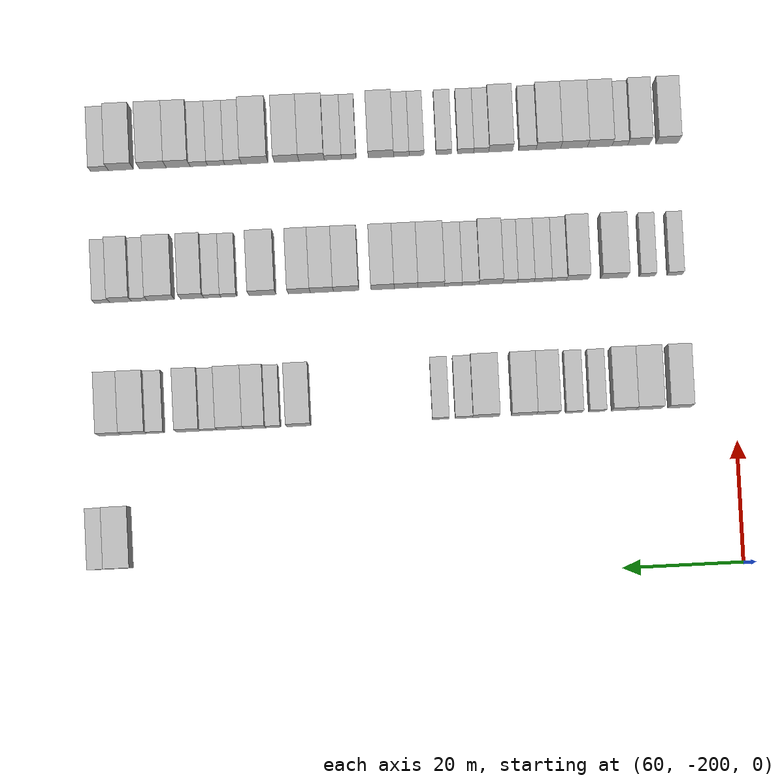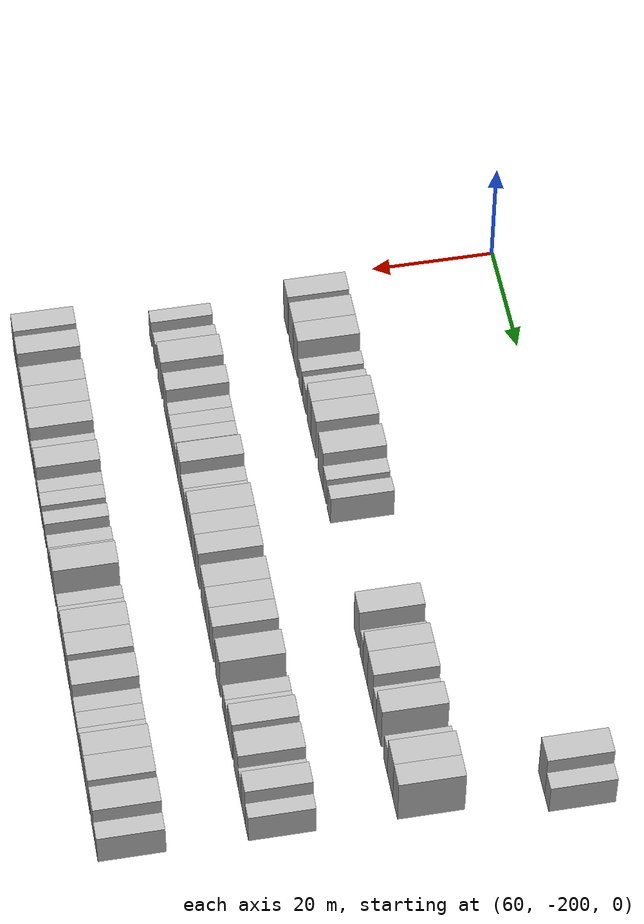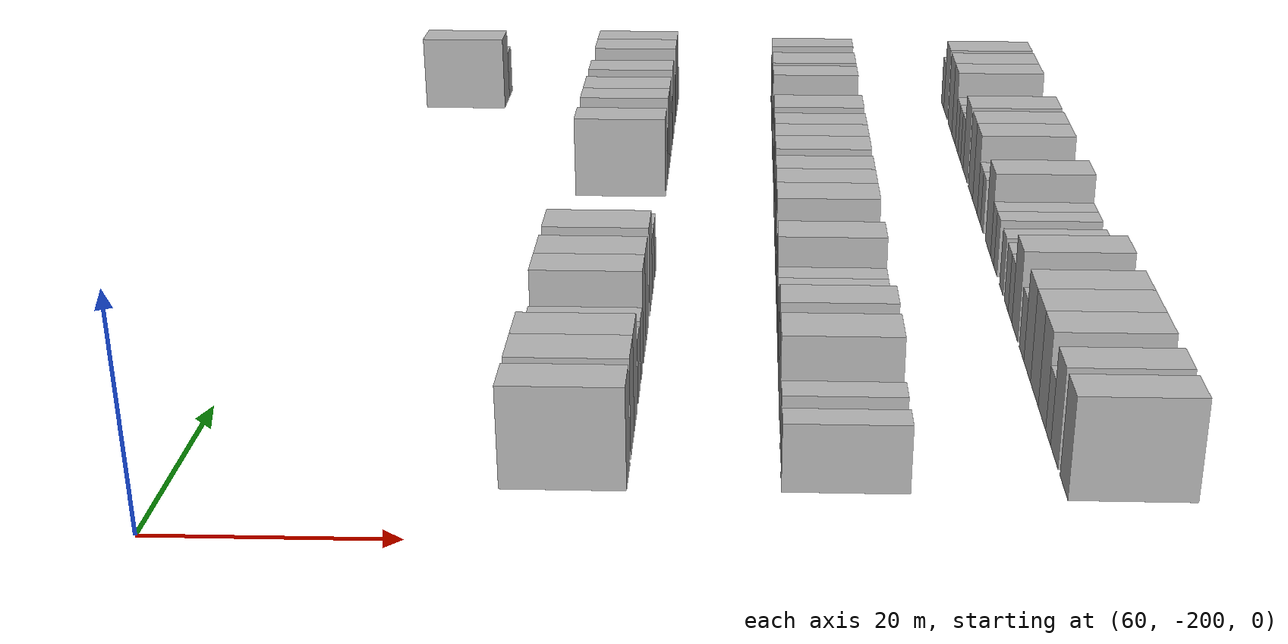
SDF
<sdf version="1.6">
 <world name="default">
  <model name="building_456">
   <static>1</static>
   <pose>69.0000 -97.4067 0 0.000000 0.000000 0.000000</pose>
   <link name="link">
    <pose>0 0 4.50 0 0 0</pose>
    <collision name="collision"><geometry><box><size>10.0000 4.2614 9.0000</size></box></geometry></collision>
    <visual name="visual">
     <cast_shadows>0</cast_shadows>
     <geometry><box><size>10.0000 4.2614 9.0000</size></box></geometry>
     <material>
      <script>
       <uri>model://HANNAS_wall/materials/scripts</uri>
       <uri>model://HANNAS_wall/materials/textures</uri>
       <name>vrc/HANNAS_wall</name>
      </script>
     </material>
    </visual>
   </link>
  </model>
  <model name="building_457">
   <static>1</static>
   <pose>69.0000 -93.8377 0 0.000000 0.000000 0.000000</pose>
   <link name="link">
    <pose>0 0 3.00 0 0 0</pose>
    <collision name="collision"><geometry><box><size>10.0000 2.8764 6.0000</size></box></geometry></collision>
    <visual name="visual">
     <cast_shadows>0</cast_shadows>
     <geometry><box><size>10.0000 2.8764 6.0000</size></box></geometry>
     <material>
      <script>
       <uri>model://HANNAS_wall/materials/scripts</uri>
       <uri>model://HANNAS_wall/materials/textures</uri>
       <name>vrc/HANNAS_wall</name>
      </script>
     </material>
    </visual>
   </link>
  </model>
  <model name="building_626">
   <static>1</static>
   <pose>91.0000 -190.6984 0 0.000000 0.000000 0.000000</pose>
   <link name="link">
    <pose>0 0 4.50 0 0 0</pose>
    <collision name="collision"><geometry><box><size>10.0000 3.8415 9.0000</size></box></geometry></collision>
    <visual name="visual">
     <cast_shadows>0</cast_shadows>
     <geometry><box><size>10.0000 3.8415 9.0000</size></box></geometry>
     <material>
      <script>
       <uri>model://HANNAS_wall/materials/scripts</uri>
       <uri>model://HANNAS_wall/materials/textures</uri>
       <name>vrc/HANNAS_wall</name>
      </script>
     </material>
    </visual>
   </link>
  </model>
  <model name="building_627">
   <static>1</static>
   <pose>91.0000 -185.6395 0 0.000000 0.000000 0.000000</pose>
   <link name="link">
    <pose>0 0 4.50 0 0 0</pose>
    <collision name="collision"><geometry><box><size>10.0000 4.2763 9.0000</size></box></geometry></collision>
    <visual name="visual">
     <cast_shadows>0</cast_shadows>
     <geometry><box><size>10.0000 4.2763 9.0000</size></box></geometry>
     <material>
      <script>
       <uri>model://HANNAS_wall/materials/scripts</uri>
       <uri>model://HANNAS_wall/materials/textures</uri>
       <name>vrc/HANNAS_wall</name>
      </script>
     </material>
    </visual>
   </link>
  </model>
  <model name="building_628">
   <static>1</static>
   <pose>91.0000 -181.4805 0 0.000000 0.000000 0.000000</pose>
   <link name="link">
    <pose>0 0 4.50 0 0 0</pose>
    <collision name="collision"><geometry><box><size>10.0000 4.0417 9.0000</size></box></geometry></collision>
    <visual name="visual">
     <cast_shadows>0</cast_shadows>
     <geometry><box><size>10.0000 4.0417 9.0000</size></box></geometry>
     <material>
      <script>
       <uri>model://HANNAS_wall/materials/scripts</uri>
       <uri>model://HANNAS_wall/materials/textures</uri>
       <name>vrc/HANNAS_wall</name>
      </script>
     </material>
    </visual>
   </link>
  </model>
  <model name="building_629">
   <static>1</static>
   <pose>91.0000 -177.0757 0 0.000000 0.000000 0.000000</pose>
   <link name="link">
    <pose>0 0 3.00 0 0 0</pose>
    <collision name="collision"><geometry><box><size>10.0000 2.7678 6.0000</size></box></geometry></collision>
    <visual name="visual">
     <cast_shadows>0</cast_shadows>
     <geometry><box><size>10.0000 2.7678 6.0000</size></box></geometry>
     <material>
      <script>
       <uri>model://HANNAS_wall/materials/scripts</uri>
       <uri>model://HANNAS_wall/materials/textures</uri>
       <name>vrc/HANNAS_wall</name>
      </script>
     </material>
    </visual>
   </link>
  </model>
  <model name="building_630">
   <static>1</static>
   <pose>91.0000 -173.2748 0 0.000000 0.000000 0.000000</pose>
   <link name="link">
    <pose>0 0 3.00 0 0 0</pose>
    <collision name="collision"><geometry><box><size>10.0000 2.8341 6.0000</size></box></geometry></collision>
    <visual name="visual">
     <cast_shadows>0</cast_shadows>
     <geometry><box><size>10.0000 2.8341 6.0000</size></box></geometry>
     <material>
      <script>
       <uri>model://HANNAS_wall/materials/scripts</uri>
       <uri>model://HANNAS_wall/materials/textures</uri>
       <name>vrc/HANNAS_wall</name>
      </script>
     </material>
    </visual>
   </link>
  </model>
  <model name="building_631">
   <static>1</static>
   <pose>91.0000 -168.9737 0 0.000000 0.000000 0.000000</pose>
   <link name="link">
    <pose>0 0 4.50 0 0 0</pose>
    <collision name="collision"><geometry><box><size>10.0000 3.7680 9.0000</size></box></geometry></collision>
    <visual name="visual">
     <cast_shadows>0</cast_shadows>
     <geometry><box><size>10.0000 3.7680 9.0000</size></box></geometry>
     <material>
      <script>
       <uri>model://HANNAS_wall/materials/scripts</uri>
       <uri>model://HANNAS_wall/materials/textures</uri>
       <name>vrc/HANNAS_wall</name>
      </script>
     </material>
    </visual>
   </link>
  </model>
  <model name="building_632">
   <static>1</static>
   <pose>91.0000 -165.0018 0 0.000000 0.000000 0.000000</pose>
   <link name="link">
    <pose>0 0 4.50 0 0 0</pose>
    <collision name="collision"><geometry><box><size>10.0000 4.1758 9.0000</size></box></geometry></collision>
    <visual name="visual">
     <cast_shadows>0</cast_shadows>
     <geometry><box><size>10.0000 4.1758 9.0000</size></box></geometry>
     <material>
      <script>
       <uri>model://HANNAS_wall/materials/scripts</uri>
       <uri>model://HANNAS_wall/materials/textures</uri>
       <name>vrc/HANNAS_wall</name>
      </script>
     </material>
    </visual>
   </link>
  </model>
  <model name="building_633">
   <static>1</static>
   <pose>91.0000 -158.7193 0 0.000000 0.000000 0.000000</pose>
   <link name="link">
    <pose>0 0 4.50 0 0 0</pose>
    <collision name="collision"><geometry><box><size>10.0000 4.3893 9.0000</size></box></geometry></collision>
    <visual name="visual">
     <cast_shadows>0</cast_shadows>
     <geometry><box><size>10.0000 4.3893 9.0000</size></box></geometry>
     <material>
      <script>
       <uri>model://HANNAS_wall/materials/scripts</uri>
       <uri>model://HANNAS_wall/materials/textures</uri>
       <name>vrc/HANNAS_wall</name>
      </script>
     </material>
    </visual>
   </link>
  </model>
  <model name="building_634">
   <static>1</static>
   <pose>91.0000 -155.0816 0 0.000000 0.000000 0.000000</pose>
   <link name="link">
    <pose>0 0 3.00 0 0 0</pose>
    <collision name="collision"><geometry><box><size>10.0000 2.8861 6.0000</size></box></geometry></collision>
    <visual name="visual">
     <cast_shadows>0</cast_shadows>
     <geometry><box><size>10.0000 2.8861 6.0000</size></box></geometry>
     <material>
      <script>
       <uri>model://HANNAS_wall/materials/scripts</uri>
       <uri>model://HANNAS_wall/materials/textures</uri>
       <name>vrc/HANNAS_wall</name>
      </script>
     </material>
    </visual>
   </link>
  </model>
  <model name="building_635">
   <static>1</static>
   <pose>91.0000 -151.2609 0 0.000000 0.000000 0.000000</pose>
   <link name="link">
    <pose>0 0 3.00 0 0 0</pose>
    <collision name="collision"><geometry><box><size>10.0000 2.7555 6.0000</size></box></geometry></collision>
    <visual name="visual">
     <cast_shadows>0</cast_shadows>
     <geometry><box><size>10.0000 2.7555 6.0000</size></box></geometry>
     <material>
      <script>
       <uri>model://HANNAS_wall/materials/scripts</uri>
       <uri>model://HANNAS_wall/materials/textures</uri>
       <name>vrc/HANNAS_wall</name>
      </script>
     </material>
    </visual>
   </link>
  </model>
  <model name="building_636">
   <static>1</static>
   <pose>91.0000 -127.8933 0 0.000000 0.000000 0.000000</pose>
   <link name="link">
    <pose>0 0 4.50 0 0 0</pose>
    <collision name="collision"><geometry><box><size>10.0000 3.9932 9.0000</size></box></geometry></collision>
    <visual name="visual">
     <cast_shadows>0</cast_shadows>
     <geometry><box><size>10.0000 3.9932 9.0000</size></box></geometry>
     <material>
      <script>
       <uri>model://HANNAS_wall/materials/scripts</uri>
       <uri>model://HANNAS_wall/materials/textures</uri>
       <name>vrc/HANNAS_wall</name>
      </script>
     </material>
    </visual>
   </link>
  </model>
  <model name="building_637">
   <static>1</static>
   <pose>91.0000 -123.6690 0 0.000000 0.000000 0.000000</pose>
   <link name="link">
    <pose>0 0 3.00 0 0 0</pose>
    <collision name="collision"><geometry><box><size>10.0000 2.4554 6.0000</size></box></geometry></collision>
    <visual name="visual">
     <cast_shadows>0</cast_shadows>
     <geometry><box><size>10.0000 2.4554 6.0000</size></box></geometry>
     <material>
      <script>
       <uri>model://HANNAS_wall/materials/scripts</uri>
       <uri>model://HANNAS_wall/materials/textures</uri>
       <name>vrc/HANNAS_wall</name>
      </script>
     </material>
    </visual>
   </link>
  </model>
  <model name="building_638">
   <static>1</static>
   <pose>91.0000 -120.6299 0 0.000000 0.000000 0.000000</pose>
   <link name="link">
    <pose>0 0 4.50 0 0 0</pose>
    <collision name="collision"><geometry><box><size>10.0000 3.6229 9.0000</size></box></geometry></collision>
    <visual name="visual">
     <cast_shadows>0</cast_shadows>
     <geometry><box><size>10.0000 3.6229 9.0000</size></box></geometry>
     <material>
      <script>
       <uri>model://HANNAS_wall/materials/scripts</uri>
       <uri>model://HANNAS_wall/materials/textures</uri>
       <name>vrc/HANNAS_wall</name>
      </script>
     </material>
    </visual>
   </link>
  </model>
  <model name="building_639">
   <static>1</static>
   <pose>91.0000 -116.6275 0 0.000000 0.000000 0.000000</pose>
   <link name="link">
    <pose>0 0 4.50 0 0 0</pose>
    <collision name="collision"><geometry><box><size>10.0000 4.3820 9.0000</size></box></geometry></collision>
    <visual name="visual">
     <cast_shadows>0</cast_shadows>
     <geometry><box><size>10.0000 4.3820 9.0000</size></box></geometry>
     <material>
      <script>
       <uri>model://HANNAS_wall/materials/scripts</uri>
       <uri>model://HANNAS_wall/materials/textures</uri>
       <name>vrc/HANNAS_wall</name>
      </script>
     </material>
    </visual>
   </link>
  </model>
  <model name="building_640">
   <static>1</static>
   <pose>91.0000 -113.0607 0 0.000000 0.000000 0.000000</pose>
   <link name="link">
    <pose>0 0 3.00 0 0 0</pose>
    <collision name="collision"><geometry><box><size>10.0000 2.7515 6.0000</size></box></geometry></collision>
    <visual name="visual">
     <cast_shadows>0</cast_shadows>
     <geometry><box><size>10.0000 2.7515 6.0000</size></box></geometry>
     <material>
      <script>
       <uri>model://HANNAS_wall/materials/scripts</uri>
       <uri>model://HANNAS_wall/materials/textures</uri>
       <name>vrc/HANNAS_wall</name>
      </script>
     </material>
    </visual>
   </link>
  </model>
  <model name="building_641">
   <static>1</static>
   <pose>91.0000 -109.7046 0 0.000000 0.000000 0.000000</pose>
   <link name="link">
    <pose>0 0 4.50 0 0 0</pose>
    <collision name="collision"><geometry><box><size>10.0000 3.9606 9.0000</size></box></geometry></collision>
    <visual name="visual">
     <cast_shadows>0</cast_shadows>
     <geometry><box><size>10.0000 3.9606 9.0000</size></box></geometry>
     <material>
      <script>
       <uri>model://HANNAS_wall/materials/scripts</uri>
       <uri>model://HANNAS_wall/materials/textures</uri>
       <name>vrc/HANNAS_wall</name>
      </script>
     </material>
    </visual>
   </link>
  </model>
  <model name="building_642">
   <static>1</static>
   <pose>91.0000 -104.2793 0 0.000000 0.000000 0.000000</pose>
   <link name="link">
    <pose>0 0 3.00 0 0 0</pose>
    <collision name="collision"><geometry><box><size>10.0000 2.8901 6.0000</size></box></geometry></collision>
    <visual name="visual">
     <cast_shadows>0</cast_shadows>
     <geometry><box><size>10.0000 2.8901 6.0000</size></box></geometry>
     <material>
      <script>
       <uri>model://HANNAS_wall/materials/scripts</uri>
       <uri>model://HANNAS_wall/materials/textures</uri>
       <name>vrc/HANNAS_wall</name>
      </script>
     </material>
    </visual>
   </link>
  </model>
  <model name="building_643">
   <static>1</static>
   <pose>91.0000 -100.7126 0 0.000000 0.000000 0.000000</pose>
   <link name="link">
    <pose>0 0 4.50 0 0 0</pose>
    <collision name="collision"><geometry><box><size>10.0000 4.2432 9.0000</size></box></geometry></collision>
    <visual name="visual">
     <cast_shadows>0</cast_shadows>
     <geometry><box><size>10.0000 4.2432 9.0000</size></box></geometry>
     <material>
      <script>
       <uri>model://HANNAS_wall/materials/scripts</uri>
       <uri>model://HANNAS_wall/materials/textures</uri>
       <name>vrc/HANNAS_wall</name>
      </script>
     </material>
    </visual>
   </link>
  </model>
  <model name="building_644">
   <static>1</static>
   <pose>91.0000 -96.7478 0 0.000000 0.000000 0.000000</pose>
   <link name="link">
    <pose>0 0 4.50 0 0 0</pose>
    <collision name="collision"><geometry><box><size>10.0000 3.6864 9.0000</size></box></geometry></collision>
    <visual name="visual">
     <cast_shadows>0</cast_shadows>
     <geometry><box><size>10.0000 3.6864 9.0000</size></box></geometry>
     <material>
      <script>
       <uri>model://HANNAS_wall/materials/scripts</uri>
       <uri>model://HANNAS_wall/materials/textures</uri>
       <name>vrc/HANNAS_wall</name>
      </script>
     </material>
    </visual>
   </link>
  </model>
  <model name="building_821">
   <static>1</static>
   <pose>113.0000 -191.1264 0 0.000000 0.000000 0.000000</pose>
   <link name="link">
    <pose>0 0 3.00 0 0 0</pose>
    <collision name="collision"><geometry><box><size>10.0000 2.5406 6.0000</size></box></geometry></collision>
    <visual name="visual">
     <cast_shadows>0</cast_shadows>
     <geometry><box><size>10.0000 2.5406 6.0000</size></box></geometry>
     <material>
      <script>
       <uri>model://HANNAS_wall/materials/scripts</uri>
       <uri>model://HANNAS_wall/materials/textures</uri>
       <name>vrc/HANNAS_wall</name>
      </script>
     </material>
    </visual>
   </link>
  </model>
  <model name="building_822">
   <static>1</static>
   <pose>113.0000 -186.5541 0 0.000000 0.000000 0.000000</pose>
   <link name="link">
    <pose>0 0 3.00 0 0 0</pose>
    <collision name="collision"><geometry><box><size>10.0000 2.6040 6.0000</size></box></geometry></collision>
    <visual name="visual">
     <cast_shadows>0</cast_shadows>
     <geometry><box><size>10.0000 2.6040 6.0000</size></box></geometry>
     <material>
      <script>
       <uri>model://HANNAS_wall/materials/scripts</uri>
       <uri>model://HANNAS_wall/materials/textures</uri>
       <name>vrc/HANNAS_wall</name>
      </script>
     </material>
    </visual>
   </link>
  </model>
  <model name="building_823">
   <static>1</static>
   <pose>113.0000 -181.0548 0 0.000000 0.000000 0.000000</pose>
   <link name="link">
    <pose>0 0 4.50 0 0 0</pose>
    <collision name="collision"><geometry><box><size>10.0000 4.3947 9.0000</size></box></geometry></collision>
    <visual name="visual">
     <cast_shadows>0</cast_shadows>
     <geometry><box><size>10.0000 4.3947 9.0000</size></box></geometry>
     <material>
      <script>
       <uri>model://HANNAS_wall/materials/scripts</uri>
       <uri>model://HANNAS_wall/materials/textures</uri>
       <name>vrc/HANNAS_wall</name>
      </script>
     </material>
    </visual>
   </link>
  </model>
  <model name="building_824">
   <static>1</static>
   <pose>113.0000 -175.0235 0 0.000000 0.000000 0.000000</pose>
   <link name="link">
    <pose>0 0 4.50 0 0 0</pose>
    <collision name="collision"><geometry><box><size>10.0000 3.6678 9.0000</size></box></geometry></collision>
    <visual name="visual">
     <cast_shadows>0</cast_shadows>
     <geometry><box><size>10.0000 3.6678 9.0000</size></box></geometry>
     <material>
      <script>
       <uri>model://HANNAS_wall/materials/scripts</uri>
       <uri>model://HANNAS_wall/materials/textures</uri>
       <name>vrc/HANNAS_wall</name>
      </script>
     </material>
    </visual>
   </link>
  </model>
  <model name="building_825">
   <static>1</static>
   <pose>113.0000 -171.9260 0 0.000000 0.000000 0.000000</pose>
   <link name="link">
    <pose>0 0 3.00 0 0 0</pose>
    <collision name="collision"><geometry><box><size>10.0000 2.5271 6.0000</size></box></geometry></collision>
    <visual name="visual">
     <cast_shadows>0</cast_shadows>
     <geometry><box><size>10.0000 2.5271 6.0000</size></box></geometry>
     <material>
      <script>
       <uri>model://HANNAS_wall/materials/scripts</uri>
       <uri>model://HANNAS_wall/materials/textures</uri>
       <name>vrc/HANNAS_wall</name>
      </script>
     </material>
    </visual>
   </link>
  </model>
  <model name="building_826">
   <static>1</static>
   <pose>113.0000 -169.2545 0 0.000000 0.000000 0.000000</pose>
   <link name="link">
    <pose>0 0 3.00 0 0 0</pose>
    <collision name="collision"><geometry><box><size>10.0000 2.8158 6.0000</size></box></geometry></collision>
    <visual name="visual">
     <cast_shadows>0</cast_shadows>
     <geometry><box><size>10.0000 2.8158 6.0000</size></box></geometry>
     <material>
      <script>
       <uri>model://HANNAS_wall/materials/scripts</uri>
       <uri>model://HANNAS_wall/materials/textures</uri>
       <name>vrc/HANNAS_wall</name>
      </script>
     </material>
    </visual>
   </link>
  </model>
  <model name="building_827">
   <static>1</static>
   <pose>113.0000 -166.4593 0 0.000000 0.000000 0.000000</pose>
   <link name="link">
    <pose>0 0 3.00 0 0 0</pose>
    <collision name="collision"><geometry><box><size>10.0000 2.7746 6.0000</size></box></geometry></collision>
    <visual name="visual">
     <cast_shadows>0</cast_shadows>
     <geometry><box><size>10.0000 2.7746 6.0000</size></box></geometry>
     <material>
      <script>
       <uri>model://HANNAS_wall/materials/scripts</uri>
       <uri>model://HANNAS_wall/materials/textures</uri>
       <name>vrc/HANNAS_wall</name>
      </script>
     </material>
    </visual>
   </link>
  </model>
  <model name="building_828">
   <static>1</static>
   <pose>113.0000 -163.8443 0 0.000000 0.000000 0.000000</pose>
   <link name="link">
    <pose>0 0 3.00 0 0 0</pose>
    <collision name="collision"><geometry><box><size>10.0000 2.4554 6.0000</size></box></geometry></collision>
    <visual name="visual">
     <cast_shadows>0</cast_shadows>
     <geometry><box><size>10.0000 2.4554 6.0000</size></box></geometry>
     <material>
      <script>
       <uri>model://HANNAS_wall/materials/scripts</uri>
       <uri>model://HANNAS_wall/materials/textures</uri>
       <name>vrc/HANNAS_wall</name>
      </script>
     </material>
    </visual>
   </link>
  </model>
  <model name="building_829">
   <static>1</static>
   <pose>113.0000 -160.6603 0 0.000000 0.000000 0.000000</pose>
   <link name="link">
    <pose>0 0 4.50 0 0 0</pose>
    <collision name="collision"><geometry><box><size>10.0000 3.9124 9.0000</size></box></geometry></collision>
    <visual name="visual">
     <cast_shadows>0</cast_shadows>
     <geometry><box><size>10.0000 3.9124 9.0000</size></box></geometry>
     <material>
      <script>
       <uri>model://HANNAS_wall/materials/scripts</uri>
       <uri>model://HANNAS_wall/materials/textures</uri>
       <name>vrc/HANNAS_wall</name>
      </script>
     </material>
    </visual>
   </link>
  </model>
  <model name="building_830">
   <static>1</static>
   <pose>113.0000 -157.2927 0 0.000000 0.000000 0.000000</pose>
   <link name="link">
    <pose>0 0 3.00 0 0 0</pose>
    <collision name="collision"><geometry><box><size>10.0000 2.8229 6.0000</size></box></geometry></collision>
    <visual name="visual">
     <cast_shadows>0</cast_shadows>
     <geometry><box><size>10.0000 2.8229 6.0000</size></box></geometry>
     <material>
      <script>
       <uri>model://HANNAS_wall/materials/scripts</uri>
       <uri>model://HANNAS_wall/materials/textures</uri>
       <name>vrc/HANNAS_wall</name>
      </script>
     </material>
    </visual>
   </link>
  </model>
  <model name="building_831">
   <static>1</static>
   <pose>113.0000 -154.4321 0 0.000000 0.000000 0.000000</pose>
   <link name="link">
    <pose>0 0 3.00 0 0 0</pose>
    <collision name="collision"><geometry><box><size>10.0000 2.8981 6.0000</size></box></geometry></collision>
    <visual name="visual">
     <cast_shadows>0</cast_shadows>
     <geometry><box><size>10.0000 2.8981 6.0000</size></box></geometry>
     <material>
      <script>
       <uri>model://HANNAS_wall/materials/scripts</uri>
       <uri>model://HANNAS_wall/materials/textures</uri>
       <name>vrc/HANNAS_wall</name>
      </script>
     </material>
    </visual>
   </link>
  </model>
  <model name="building_832">
   <static>1</static>
   <pose>113.0000 -150.7845 0 0.000000 0.000000 0.000000</pose>
   <link name="link">
    <pose>0 0 4.50 0 0 0</pose>
    <collision name="collision"><geometry><box><size>10.0000 4.3971 9.0000</size></box></geometry></collision>
    <visual name="visual">
     <cast_shadows>0</cast_shadows>
     <geometry><box><size>10.0000 4.3971 9.0000</size></box></geometry>
     <material>
      <script>
       <uri>model://HANNAS_wall/materials/scripts</uri>
       <uri>model://HANNAS_wall/materials/textures</uri>
       <name>vrc/HANNAS_wall</name>
      </script>
     </material>
    </visual>
   </link>
  </model>
  <model name="building_833">
   <static>1</static>
   <pose>113.0000 -146.6176 0 0.000000 0.000000 0.000000</pose>
   <link name="link">
    <pose>0 0 4.50 0 0 0</pose>
    <collision name="collision"><geometry><box><size>10.0000 3.9366 9.0000</size></box></geometry></collision>
    <visual name="visual">
     <cast_shadows>0</cast_shadows>
     <geometry><box><size>10.0000 3.9366 9.0000</size></box></geometry>
     <material>
      <script>
       <uri>model://HANNAS_wall/materials/scripts</uri>
       <uri>model://HANNAS_wall/materials/textures</uri>
       <name>vrc/HANNAS_wall</name>
      </script>
     </material>
    </visual>
   </link>
  </model>
  <model name="building_834">
   <static>1</static>
   <pose>113.0000 -142.7387 0 0.000000 0.000000 0.000000</pose>
   <link name="link">
    <pose>0 0 4.50 0 0 0</pose>
    <collision name="collision"><geometry><box><size>10.0000 3.8212 9.0000</size></box></geometry></collision>
    <visual name="visual">
     <cast_shadows>0</cast_shadows>
     <geometry><box><size>10.0000 3.8212 9.0000</size></box></geometry>
     <material>
      <script>
       <uri>model://HANNAS_wall/materials/scripts</uri>
       <uri>model://HANNAS_wall/materials/textures</uri>
       <name>vrc/HANNAS_wall</name>
      </script>
     </material>
    </visual>
   </link>
  </model>
  <model name="building_835">
   <static>1</static>
   <pose>113.0000 -136.7159 0 0.000000 0.000000 0.000000</pose>
   <link name="link">
    <pose>0 0 4.50 0 0 0</pose>
    <collision name="collision"><geometry><box><size>10.0000 4.2244 9.0000</size></box></geometry></collision>
    <visual name="visual">
     <cast_shadows>0</cast_shadows>
     <geometry><box><size>10.0000 4.2244 9.0000</size></box></geometry>
     <material>
      <script>
       <uri>model://HANNAS_wall/materials/scripts</uri>
       <uri>model://HANNAS_wall/materials/textures</uri>
       <name>vrc/HANNAS_wall</name>
      </script>
     </material>
    </visual>
   </link>
  </model>
  <model name="building_836">
   <static>1</static>
   <pose>113.0000 -132.6834 0 0.000000 0.000000 0.000000</pose>
   <link name="link">
    <pose>0 0 4.50 0 0 0</pose>
    <collision name="collision"><geometry><box><size>10.0000 3.8406 9.0000</size></box></geometry></collision>
    <visual name="visual">
     <cast_shadows>0</cast_shadows>
     <geometry><box><size>10.0000 3.8406 9.0000</size></box></geometry>
     <material>
      <script>
       <uri>model://HANNAS_wall/materials/scripts</uri>
       <uri>model://HANNAS_wall/materials/textures</uri>
       <name>vrc/HANNAS_wall</name>
      </script>
     </material>
    </visual>
   </link>
  </model>
  <model name="building_837">
   <static>1</static>
   <pose>113.0000 -128.9314 0 0.000000 0.000000 0.000000</pose>
   <link name="link">
    <pose>0 0 4.50 0 0 0</pose>
    <collision name="collision"><geometry><box><size>10.0000 3.6634 9.0000</size></box></geometry></collision>
    <visual name="visual">
     <cast_shadows>0</cast_shadows>
     <geometry><box><size>10.0000 3.6634 9.0000</size></box></geometry>
     <material>
      <script>
       <uri>model://HANNAS_wall/materials/scripts</uri>
       <uri>model://HANNAS_wall/materials/textures</uri>
       <name>vrc/HANNAS_wall</name>
      </script>
     </material>
    </visual>
   </link>
  </model>
  <model name="building_838">
   <static>1</static>
   <pose>113.0000 -122.8642 0 0.000000 0.000000 0.000000</pose>
   <link name="link">
    <pose>0 0 4.50 0 0 0</pose>
    <collision name="collision"><geometry><box><size>10.0000 4.4710 9.0000</size></box></geometry></collision>
    <visual name="visual">
     <cast_shadows>0</cast_shadows>
     <geometry><box><size>10.0000 4.4710 9.0000</size></box></geometry>
     <material>
      <script>
       <uri>model://HANNAS_wall/materials/scripts</uri>
       <uri>model://HANNAS_wall/materials/textures</uri>
       <name>vrc/HANNAS_wall</name>
      </script>
     </material>
    </visual>
   </link>
  </model>
  <model name="building_839">
   <static>1</static>
   <pose>113.0000 -117.2922 0 0.000000 0.000000 0.000000</pose>
   <link name="link">
    <pose>0 0 3.00 0 0 0</pose>
    <collision name="collision"><geometry><box><size>10.0000 2.6729 6.0000</size></box></geometry></collision>
    <visual name="visual">
     <cast_shadows>0</cast_shadows>
     <geometry><box><size>10.0000 2.6729 6.0000</size></box></geometry>
     <material>
      <script>
       <uri>model://HANNAS_wall/materials/scripts</uri>
       <uri>model://HANNAS_wall/materials/textures</uri>
       <name>vrc/HANNAS_wall</name>
      </script>
     </material>
    </visual>
   </link>
  </model>
  <model name="building_840">
   <static>1</static>
   <pose>113.0000 -114.5451 0 0.000000 0.000000 0.000000</pose>
   <link name="link">
    <pose>0 0 3.00 0 0 0</pose>
    <collision name="collision"><geometry><box><size>10.0000 2.8213 6.0000</size></box></geometry></collision>
    <visual name="visual">
     <cast_shadows>0</cast_shadows>
     <geometry><box><size>10.0000 2.8213 6.0000</size></box></geometry>
     <material>
      <script>
       <uri>model://HANNAS_wall/materials/scripts</uri>
       <uri>model://HANNAS_wall/materials/textures</uri>
       <name>vrc/HANNAS_wall</name>
      </script>
     </material>
    </visual>
   </link>
  </model>
  <model name="building_841">
   <static>1</static>
   <pose>113.0000 -111.2052 0 0.000000 0.000000 0.000000</pose>
   <link name="link">
    <pose>0 0 4.50 0 0 0</pose>
    <collision name="collision"><geometry><box><size>10.0000 3.8587 9.0000</size></box></geometry></collision>
    <visual name="visual">
     <cast_shadows>0</cast_shadows>
     <geometry><box><size>10.0000 3.8587 9.0000</size></box></geometry>
     <material>
      <script>
       <uri>model://HANNAS_wall/materials/scripts</uri>
       <uri>model://HANNAS_wall/materials/textures</uri>
       <name>vrc/HANNAS_wall</name>
      </script>
     </material>
    </visual>
   </link>
  </model>
  <model name="building_842">
   <static>1</static>
   <pose>113.0000 -106.0284 0 0.000000 0.000000 0.000000</pose>
   <link name="link">
    <pose>0 0 4.50 0 0 0</pose>
    <collision name="collision"><geometry><box><size>10.0000 4.4949 9.0000</size></box></geometry></collision>
    <visual name="visual">
     <cast_shadows>0</cast_shadows>
     <geometry><box><size>10.0000 4.4949 9.0000</size></box></geometry>
     <material>
      <script>
       <uri>model://HANNAS_wall/materials/scripts</uri>
       <uri>model://HANNAS_wall/materials/textures</uri>
       <name>vrc/HANNAS_wall</name>
      </script>
     </material>
    </visual>
   </link>
  </model>
  <model name="building_843">
   <static>1</static>
   <pose>113.0000 -102.4910 0 0.000000 0.000000 0.000000</pose>
   <link name="link">
    <pose>0 0 3.00 0 0 0</pose>
    <collision name="collision"><geometry><box><size>10.0000 2.5798 6.0000</size></box></geometry></collision>
    <visual name="visual">
     <cast_shadows>0</cast_shadows>
     <geometry><box><size>10.0000 2.5798 6.0000</size></box></geometry>
     <material>
      <script>
       <uri>model://HANNAS_wall/materials/scripts</uri>
       <uri>model://HANNAS_wall/materials/textures</uri>
       <name>vrc/HANNAS_wall</name>
      </script>
     </material>
    </visual>
   </link>
  </model>
  <model name="building_844">
   <static>1</static>
   <pose>113.0000 -99.3988 0 0.000000 0.000000 0.000000</pose>
   <link name="link">
    <pose>0 0 4.50 0 0 0</pose>
    <collision name="collision"><geometry><box><size>10.0000 3.6045 9.0000</size></box></geometry></collision>
    <visual name="visual">
     <cast_shadows>0</cast_shadows>
     <geometry><box><size>10.0000 3.6045 9.0000</size></box></geometry>
     <material>
      <script>
       <uri>model://HANNAS_wall/materials/scripts</uri>
       <uri>model://HANNAS_wall/materials/textures</uri>
       <name>vrc/HANNAS_wall</name>
      </script>
     </material>
    </visual>
   </link>
  </model>
  <model name="building_845">
   <static>1</static>
   <pose>113.0000 -96.3070 0 0.000000 0.000000 0.000000</pose>
   <link name="link">
    <pose>0 0 3.00 0 0 0</pose>
    <collision name="collision"><geometry><box><size>10.0000 2.5791 6.0000</size></box></geometry></collision>
    <visual name="visual">
     <cast_shadows>0</cast_shadows>
     <geometry><box><size>10.0000 2.5791 6.0000</size></box></geometry>
     <material>
      <script>
       <uri>model://HANNAS_wall/materials/scripts</uri>
       <uri>model://HANNAS_wall/materials/textures</uri>
       <name>vrc/HANNAS_wall</name>
      </script>
     </material>
    </visual>
   </link>
  </model>
  <model name="building_1003">
   <static>1</static>
   <pose>135.0000 -191.0821 0 0.000000 0.000000 0.000000</pose>
   <link name="link">
    <pose>0 0 4.50 0 0 0</pose>
    <collision name="collision"><geometry><box><size>10.0000 3.7199 9.0000</size></box></geometry></collision>
    <visual name="visual">
     <cast_shadows>0</cast_shadows>
     <geometry><box><size>10.0000 3.7199 9.0000</size></box></geometry>
     <material>
      <script>
       <uri>model://HANNAS_wall/materials/scripts</uri>
       <uri>model://HANNAS_wall/materials/textures</uri>
       <name>vrc/HANNAS_wall</name>
      </script>
     </material>
    </visual>
   </link>
  </model>
  <model name="building_1004">
   <static>1</static>
   <pose>135.0000 -186.3694 0 0.000000 0.000000 0.000000</pose>
   <link name="link">
    <pose>0 0 4.50 0 0 0</pose>
    <collision name="collision"><geometry><box><size>10.0000 3.7055 9.0000</size></box></geometry></collision>
    <visual name="visual">
     <cast_shadows>0</cast_shadows>
     <geometry><box><size>10.0000 3.7055 9.0000</size></box></geometry>
     <material>
      <script>
       <uri>model://HANNAS_wall/materials/scripts</uri>
       <uri>model://HANNAS_wall/materials/textures</uri>
       <name>vrc/HANNAS_wall</name>
      </script>
     </material>
    </visual>
   </link>
  </model>
  <model name="building_1005">
   <static>1</static>
   <pose>135.0000 -183.2199 0 0.000000 0.000000 0.000000</pose>
   <link name="link">
    <pose>0 0 3.00 0 0 0</pose>
    <collision name="collision"><geometry><box><size>10.0000 2.5936 6.0000</size></box></geometry></collision>
    <visual name="visual">
     <cast_shadows>0</cast_shadows>
     <geometry><box><size>10.0000 2.5936 6.0000</size></box></geometry>
     <material>
      <script>
       <uri>model://HANNAS_wall/materials/scripts</uri>
       <uri>model://HANNAS_wall/materials/textures</uri>
       <name>vrc/HANNAS_wall</name>
      </script>
     </material>
    </visual>
   </link>
  </model>
  <model name="building_1006">
   <static>1</static>
   <pose>135.0000 -179.8825 0 0.000000 0.000000 0.000000</pose>
   <link name="link">
    <pose>0 0 4.50 0 0 0</pose>
    <collision name="collision"><geometry><box><size>10.0000 4.0810 9.0000</size></box></geometry></collision>
    <visual name="visual">
     <cast_shadows>0</cast_shadows>
     <geometry><box><size>10.0000 4.0810 9.0000</size></box></geometry>
     <material>
      <script>
       <uri>model://HANNAS_wall/materials/scripts</uri>
       <uri>model://HANNAS_wall/materials/textures</uri>
       <name>vrc/HANNAS_wall</name>
      </script>
     </material>
    </visual>
   </link>
  </model>
  <model name="building_1007">
   <static>1</static>
   <pose>135.0000 -175.6061 0 0.000000 0.000000 0.000000</pose>
   <link name="link">
    <pose>0 0 4.50 0 0 0</pose>
    <collision name="collision"><geometry><box><size>10.0000 4.4719 9.0000</size></box></geometry></collision>
    <visual name="visual">
     <cast_shadows>0</cast_shadows>
     <geometry><box><size>10.0000 4.4719 9.0000</size></box></geometry>
     <material>
      <script>
       <uri>model://HANNAS_wall/materials/scripts</uri>
       <uri>model://HANNAS_wall/materials/textures</uri>
       <name>vrc/HANNAS_wall</name>
      </script>
     </material>
    </visual>
   </link>
  </model>
  <model name="building_1008">
   <static>1</static>
   <pose>135.0000 -171.3326 0 0.000000 0.000000 0.000000</pose>
   <link name="link">
    <pose>0 0 4.50 0 0 0</pose>
    <collision name="collision"><geometry><box><size>10.0000 4.0749 9.0000</size></box></geometry></collision>
    <visual name="visual">
     <cast_shadows>0</cast_shadows>
     <geometry><box><size>10.0000 4.0749 9.0000</size></box></geometry>
     <material>
      <script>
       <uri>model://HANNAS_wall/materials/scripts</uri>
       <uri>model://HANNAS_wall/materials/textures</uri>
       <name>vrc/HANNAS_wall</name>
      </script>
     </material>
    </visual>
   </link>
  </model>
  <model name="building_1009">
   <static>1</static>
   <pose>135.0000 -167.8603 0 0.000000 0.000000 0.000000</pose>
   <link name="link">
    <pose>0 0 3.00 0 0 0</pose>
    <collision name="collision"><geometry><box><size>10.0000 2.8698 6.0000</size></box></geometry></collision>
    <visual name="visual">
     <cast_shadows>0</cast_shadows>
     <geometry><box><size>10.0000 2.8698 6.0000</size></box></geometry>
     <material>
      <script>
       <uri>model://HANNAS_wall/materials/scripts</uri>
       <uri>model://HANNAS_wall/materials/textures</uri>
       <name>vrc/HANNAS_wall</name>
      </script>
     </material>
    </visual>
   </link>
  </model>
  <model name="building_1010">
   <static>1</static>
   <pose>135.0000 -163.4295 0 0.000000 0.000000 0.000000</pose>
   <link name="link">
    <pose>0 0 4.50 0 0 0</pose>
    <collision name="collision"><geometry><box><size>10.0000 3.9919 9.0000</size></box></geometry></collision>
    <visual name="visual">
     <cast_shadows>0</cast_shadows>
     <geometry><box><size>10.0000 3.9919 9.0000</size></box></geometry>
     <material>
      <script>
       <uri>model://HANNAS_wall/materials/scripts</uri>
       <uri>model://HANNAS_wall/materials/textures</uri>
       <name>vrc/HANNAS_wall</name>
      </script>
     </material>
    </visual>
   </link>
  </model>
  <model name="building_1011">
   <static>1</static>
   <pose>135.0000 -160.1707 0 0.000000 0.000000 0.000000</pose>
   <link name="link">
    <pose>0 0 3.00 0 0 0</pose>
    <collision name="collision"><geometry><box><size>10.0000 2.5258 6.0000</size></box></geometry></collision>
    <visual name="visual">
     <cast_shadows>0</cast_shadows>
     <geometry><box><size>10.0000 2.5258 6.0000</size></box></geometry>
     <material>
      <script>
       <uri>model://HANNAS_wall/materials/scripts</uri>
       <uri>model://HANNAS_wall/materials/textures</uri>
       <name>vrc/HANNAS_wall</name>
      </script>
     </material>
    </visual>
   </link>
  </model>
  <model name="building_1012">
   <static>1</static>
   <pose>135.0000 -157.5716 0 0.000000 0.000000 0.000000</pose>
   <link name="link">
    <pose>0 0 3.00 0 0 0</pose>
    <collision name="collision"><geometry><box><size>10.0000 2.6723 6.0000</size></box></geometry></collision>
    <visual name="visual">
     <cast_shadows>0</cast_shadows>
     <geometry><box><size>10.0000 2.6723 6.0000</size></box></geometry>
     <material>
      <script>
       <uri>model://HANNAS_wall/materials/scripts</uri>
       <uri>model://HANNAS_wall/materials/textures</uri>
       <name>vrc/HANNAS_wall</name>
      </script>
     </material>
    </visual>
   </link>
  </model>
  <model name="building_1013">
   <static>1</static>
   <pose>135.0000 -153.9484 0 0.000000 0.000000 0.000000</pose>
   <link name="link">
    <pose>0 0 3.00 0 0 0</pose>
    <collision name="collision"><geometry><box><size>10.0000 2.5741 6.0000</size></box></geometry></collision>
    <visual name="visual">
     <cast_shadows>0</cast_shadows>
     <geometry><box><size>10.0000 2.5741 6.0000</size></box></geometry>
     <material>
      <script>
       <uri>model://HANNAS_wall/materials/scripts</uri>
       <uri>model://HANNAS_wall/materials/textures</uri>
       <name>vrc/HANNAS_wall</name>
      </script>
     </material>
    </visual>
   </link>
  </model>
  <model name="building_1014">
   <static>1</static>
   <pose>135.0000 -149.4209 0 0.000000 0.000000 0.000000</pose>
   <link name="link">
    <pose>0 0 3.00 0 0 0</pose>
    <collision name="collision"><geometry><box><size>10.0000 2.4809 6.0000</size></box></geometry></collision>
    <visual name="visual">
     <cast_shadows>0</cast_shadows>
     <geometry><box><size>10.0000 2.4809 6.0000</size></box></geometry>
     <material>
      <script>
       <uri>model://HANNAS_wall/materials/scripts</uri>
       <uri>model://HANNAS_wall/materials/textures</uri>
       <name>vrc/HANNAS_wall</name>
      </script>
     </material>
    </visual>
   </link>
  </model>
  <model name="building_1015">
   <static>1</static>
   <pose>135.0000 -146.8911 0 0.000000 0.000000 0.000000</pose>
   <link name="link">
    <pose>0 0 3.00 0 0 0</pose>
    <collision name="collision"><geometry><box><size>10.0000 2.5786 6.0000</size></box></geometry></collision>
    <visual name="visual">
     <cast_shadows>0</cast_shadows>
     <geometry><box><size>10.0000 2.5786 6.0000</size></box></geometry>
     <material>
      <script>
       <uri>model://HANNAS_wall/materials/scripts</uri>
       <uri>model://HANNAS_wall/materials/textures</uri>
       <name>vrc/HANNAS_wall</name>
      </script>
     </material>
    </visual>
   </link>
  </model>
  <model name="building_1016">
   <static>1</static>
   <pose>135.0000 -143.5026 0 0.000000 0.000000 0.000000</pose>
   <link name="link">
    <pose>0 0 4.50 0 0 0</pose>
    <collision name="collision"><geometry><box><size>10.0000 4.1985 9.0000</size></box></geometry></collision>
    <visual name="visual">
     <cast_shadows>0</cast_shadows>
     <geometry><box><size>10.0000 4.1985 9.0000</size></box></geometry>
     <material>
      <script>
       <uri>model://HANNAS_wall/materials/scripts</uri>
       <uri>model://HANNAS_wall/materials/textures</uri>
       <name>vrc/HANNAS_wall</name>
      </script>
     </material>
    </visual>
   </link>
  </model>
  <model name="building_1017">
   <static>1</static>
   <pose>135.0000 -138.1918 0 0.000000 0.000000 0.000000</pose>
   <link name="link">
    <pose>0 0 3.00 0 0 0</pose>
    <collision name="collision"><geometry><box><size>10.0000 2.4229 6.0000</size></box></geometry></collision>
    <visual name="visual">
     <cast_shadows>0</cast_shadows>
     <geometry><box><size>10.0000 2.4229 6.0000</size></box></geometry>
     <material>
      <script>
       <uri>model://HANNAS_wall/materials/scripts</uri>
       <uri>model://HANNAS_wall/materials/textures</uri>
       <name>vrc/HANNAS_wall</name>
      </script>
     </material>
    </visual>
   </link>
  </model>
  <model name="building_1018">
   <static>1</static>
   <pose>135.0000 -135.5409 0 0.000000 0.000000 0.000000</pose>
   <link name="link">
    <pose>0 0 3.00 0 0 0</pose>
    <collision name="collision"><geometry><box><size>10.0000 2.8789 6.0000</size></box></geometry></collision>
    <visual name="visual">
     <cast_shadows>0</cast_shadows>
     <geometry><box><size>10.0000 2.8789 6.0000</size></box></geometry>
     <material>
      <script>
       <uri>model://HANNAS_wall/materials/scripts</uri>
       <uri>model://HANNAS_wall/materials/textures</uri>
       <name>vrc/HANNAS_wall</name>
      </script>
     </material>
    </visual>
   </link>
  </model>
  <model name="building_1019">
   <static>1</static>
   <pose>135.0000 -131.9896 0 0.000000 0.000000 0.000000</pose>
   <link name="link">
    <pose>0 0 4.50 0 0 0</pose>
    <collision name="collision"><geometry><box><size>10.0000 4.2238 9.0000</size></box></geometry></collision>
    <visual name="visual">
     <cast_shadows>0</cast_shadows>
     <geometry><box><size>10.0000 4.2238 9.0000</size></box></geometry>
     <material>
      <script>
       <uri>model://HANNAS_wall/materials/scripts</uri>
       <uri>model://HANNAS_wall/materials/textures</uri>
       <name>vrc/HANNAS_wall</name>
      </script>
     </material>
    </visual>
   </link>
  </model>
  <model name="building_1020">
   <static>1</static>
   <pose>135.0000 -127.8268 0 0.000000 0.000000 0.000000</pose>
   <link name="link">
    <pose>0 0 4.50 0 0 0</pose>
    <collision name="collision"><geometry><box><size>10.0000 4.1018 9.0000</size></box></geometry></collision>
    <visual name="visual">
     <cast_shadows>0</cast_shadows>
     <geometry><box><size>10.0000 4.1018 9.0000</size></box></geometry>
     <material>
      <script>
       <uri>model://HANNAS_wall/materials/scripts</uri>
       <uri>model://HANNAS_wall/materials/textures</uri>
       <name>vrc/HANNAS_wall</name>
      </script>
     </material>
    </visual>
   </link>
  </model>
  <model name="building_1021">
   <static>1</static>
   <pose>135.0000 -122.5511 0 0.000000 0.000000 0.000000</pose>
   <link name="link">
    <pose>0 0 4.50 0 0 0</pose>
    <collision name="collision"><geometry><box><size>10.0000 4.4496 9.0000</size></box></geometry></collision>
    <visual name="visual">
     <cast_shadows>0</cast_shadows>
     <geometry><box><size>10.0000 4.4496 9.0000</size></box></geometry>
     <material>
      <script>
       <uri>model://HANNAS_wall/materials/scripts</uri>
       <uri>model://HANNAS_wall/materials/textures</uri>
       <name>vrc/HANNAS_wall</name>
      </script>
     </material>
    </visual>
   </link>
  </model>
  <model name="building_1022">
   <static>1</static>
   <pose>135.0000 -118.9523 0 0.000000 0.000000 0.000000</pose>
   <link name="link">
    <pose>0 0 3.00 0 0 0</pose>
    <collision name="collision"><geometry><box><size>10.0000 2.7481 6.0000</size></box></geometry></collision>
    <visual name="visual">
     <cast_shadows>0</cast_shadows>
     <geometry><box><size>10.0000 2.7481 6.0000</size></box></geometry>
     <material>
      <script>
       <uri>model://HANNAS_wall/materials/scripts</uri>
       <uri>model://HANNAS_wall/materials/textures</uri>
       <name>vrc/HANNAS_wall</name>
      </script>
     </material>
    </visual>
   </link>
  </model>
  <model name="building_1023">
   <static>1</static>
   <pose>135.0000 -116.1416 0 0.000000 0.000000 0.000000</pose>
   <link name="link">
    <pose>0 0 3.00 0 0 0</pose>
    <collision name="collision"><geometry><box><size>10.0000 2.8734 6.0000</size></box></geometry></collision>
    <visual name="visual">
     <cast_shadows>0</cast_shadows>
     <geometry><box><size>10.0000 2.8734 6.0000</size></box></geometry>
     <material>
      <script>
       <uri>model://HANNAS_wall/materials/scripts</uri>
       <uri>model://HANNAS_wall/materials/textures</uri>
       <name>vrc/HANNAS_wall</name>
      </script>
     </material>
    </visual>
   </link>
  </model>
  <model name="building_1024">
   <static>1</static>
   <pose>135.0000 -113.2459 0 0.000000 0.000000 0.000000</pose>
   <link name="link">
    <pose>0 0 3.00 0 0 0</pose>
    <collision name="collision"><geometry><box><size>10.0000 2.9179 6.0000</size></box></geometry></collision>
    <visual name="visual">
     <cast_shadows>0</cast_shadows>
     <geometry><box><size>10.0000 2.9179 6.0000</size></box></geometry>
     <material>
      <script>
       <uri>model://HANNAS_wall/materials/scripts</uri>
       <uri>model://HANNAS_wall/materials/textures</uri>
       <name>vrc/HANNAS_wall</name>
      </script>
     </material>
    </visual>
   </link>
  </model>
  <model name="building_1025">
   <static>1</static>
   <pose>135.0000 -109.8102 0 0.000000 0.000000 0.000000</pose>
   <link name="link">
    <pose>0 0 4.50 0 0 0</pose>
    <collision name="collision"><geometry><box><size>10.0000 3.9534 9.0000</size></box></geometry></collision>
    <visual name="visual">
     <cast_shadows>0</cast_shadows>
     <geometry><box><size>10.0000 3.9534 9.0000</size></box></geometry>
     <material>
      <script>
       <uri>model://HANNAS_wall/materials/scripts</uri>
       <uri>model://HANNAS_wall/materials/textures</uri>
       <name>vrc/HANNAS_wall</name>
      </script>
     </material>
    </visual>
   </link>
  </model>
  <model name="building_1026">
   <static>1</static>
   <pose>135.0000 -105.6160 0 0.000000 0.000000 0.000000</pose>
   <link name="link">
    <pose>0 0 4.50 0 0 0</pose>
    <collision name="collision"><geometry><box><size>10.0000 4.4351 9.0000</size></box></geometry></collision>
    <visual name="visual">
     <cast_shadows>0</cast_shadows>
     <geometry><box><size>10.0000 4.4351 9.0000</size></box></geometry>
     <material>
      <script>
       <uri>model://HANNAS_wall/materials/scripts</uri>
       <uri>model://HANNAS_wall/materials/textures</uri>
       <name>vrc/HANNAS_wall</name>
      </script>
     </material>
    </visual>
   </link>
  </model>
  <model name="building_1027">
   <static>1</static>
   <pose>135.0000 -100.3147 0 0.000000 0.000000 0.000000</pose>
   <link name="link">
    <pose>0 0 4.50 0 0 0</pose>
    <collision name="collision"><geometry><box><size>10.0000 4.1673 9.0000</size></box></geometry></collision>
    <visual name="visual">
     <cast_shadows>0</cast_shadows>
     <geometry><box><size>10.0000 4.1673 9.0000</size></box></geometry>
     <material>
      <script>
       <uri>model://HANNAS_wall/materials/scripts</uri>
       <uri>model://HANNAS_wall/materials/textures</uri>
       <name>vrc/HANNAS_wall</name>
      </script>
     </material>
    </visual>
   </link>
  </model>
  <model name="building_1028">
   <static>1</static>
   <pose>135.0000 -96.7461 0 0.000000 0.000000 0.000000</pose>
   <link name="link">
    <pose>0 0 3.00 0 0 0</pose>
    <collision name="collision"><geometry><box><size>10.0000 2.9699 6.0000</size></box></geometry></collision>
    <visual name="visual">
     <cast_shadows>0</cast_shadows>
     <geometry><box><size>10.0000 2.9699 6.0000</size></box></geometry>
     <material>
      <script>
       <uri>model://HANNAS_wall/materials/scripts</uri>
       <uri>model://HANNAS_wall/materials/textures</uri>
       <name>vrc/HANNAS_wall</name>
      </script>
     </material>
    </visual>
   </link>
  </model>
 </world>
</sdf>
